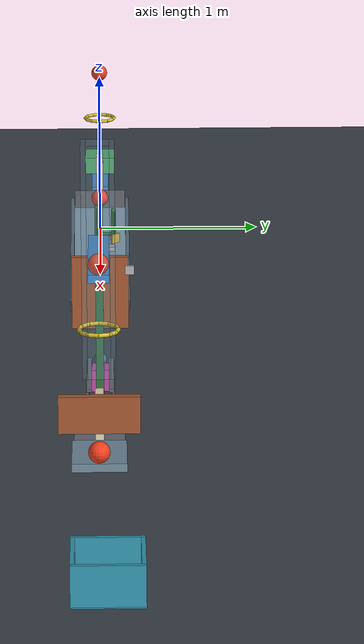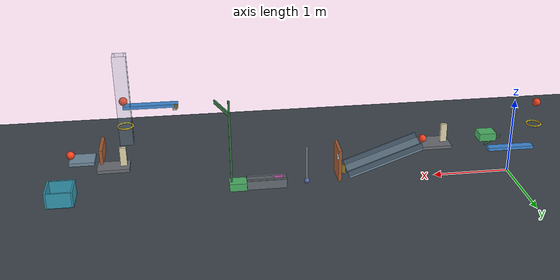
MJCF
<mujoco model="passive_chain_reaction">
  <compiler angle="degree" autolimits="true" inertiafromgeom="auto"/>
  <option timestep="0.002" gravity="0 0 -9.81" integrator="implicitfast" solver="Newton" iterations="100" tolerance="1e-10" cone="elliptic" impratio="5"/>
  <size njmax="3000" nconmax="1000"/>
  <visual>
    <global azimuth="90" elevation="-25"/>
    <headlight ambient="0.35 0.35 0.35" diffuse="0.65 0.65 0.65" specular="0.15 0.15 0.15"/>
  </visual>

  <!-- solref damping ratio 0.71565 approximates restitution 0.04. -->
  <!-- Unspecified keyframe coordinates use qpos0; all initial velocities are zero. -->
  <!-- The door and seesaw springs are held by contact-released transverse bolts. -->

  <worldbody>
    <light name="main_light" pos="2 -3 7" dir="0 0 -1" directional="true"/>
    <camera name="overview" pos="2.8 -7 4" xyaxes="1 0 0 0 0.447214 0.894427"/>
    <geom name="floor" type="plane" size="8 3 0.1" friction="0.72 0.005 0.0001" solref="0.006 0.71565" solimp="0.95 0.99 0.001" rgba="0.24 0.27 0.30 1"/>

    <body name="ball1" pos="-0.285 0 0.962020143">
      <freejoint name="ball1_free"/>
      <geom name="ball1_sphere" type="sphere" size="0.05" mass="0.20" friction="0.72 0.005 0.0001" solref="0.006 0.71565" solimp="0.95 0.99 0.001" rgba="0.95 0.25 0.12 1"/>
    </body>

    <!-- Twelve capsule segments give a 0.16 m minimum clear diameter. -->
    <body name="ring1" pos="-0.285 0 0.662020143">
      <geom name="ring1_01" type="capsule" fromto="0.093174857 0 0 0.080690967 0.046587429 0" size="0.01" mass="0" friction="0.72 0.005 0.0001" solref="0.006 0.71565" rgba="0.85 0.75 0.15 1"/>
      <geom name="ring1_02" type="capsule" fromto="0.080690967 0.046587429 0 0.046587429 0.080690967 0" size="0.01" mass="0" friction="0.72 0.005 0.0001" solref="0.006 0.71565" rgba="0.85 0.75 0.15 1"/>
      <geom name="ring1_03" type="capsule" fromto="0.046587429 0.080690967 0 0 0.093174857 0" size="0.01" mass="0" friction="0.72 0.005 0.0001" solref="0.006 0.71565" rgba="0.85 0.75 0.15 1"/>
      <geom name="ring1_04" type="capsule" fromto="0 0.093174857 0 -0.046587429 0.080690967 0" size="0.01" mass="0" friction="0.72 0.005 0.0001" solref="0.006 0.71565" rgba="0.85 0.75 0.15 1"/>
      <geom name="ring1_05" type="capsule" fromto="-0.046587429 0.080690967 0 -0.080690967 0.046587429 0" size="0.01" mass="0" friction="0.72 0.005 0.0001" solref="0.006 0.71565" rgba="0.85 0.75 0.15 1"/>
      <geom name="ring1_06" type="capsule" fromto="-0.080690967 0.046587429 0 -0.093174857 0 0" size="0.01" mass="0" friction="0.72 0.005 0.0001" solref="0.006 0.71565" rgba="0.85 0.75 0.15 1"/>
      <geom name="ring1_07" type="capsule" fromto="-0.093174857 0 0 -0.080690967 -0.046587429 0" size="0.01" mass="0" friction="0.72 0.005 0.0001" solref="0.006 0.71565" rgba="0.85 0.75 0.15 1"/>
      <geom name="ring1_08" type="capsule" fromto="-0.080690967 -0.046587429 0 -0.046587429 -0.080690967 0" size="0.01" mass="0" friction="0.72 0.005 0.0001" solref="0.006 0.71565" rgba="0.85 0.75 0.15 1"/>
      <geom name="ring1_09" type="capsule" fromto="-0.046587429 -0.080690967 0 0 -0.093174857 0" size="0.01" mass="0" friction="0.72 0.005 0.0001" solref="0.006 0.71565" rgba="0.85 0.75 0.15 1"/>
      <geom name="ring1_10" type="capsule" fromto="0 -0.093174857 0 0.046587429 -0.080690967 0" size="0.01" mass="0" friction="0.72 0.005 0.0001" solref="0.006 0.71565" rgba="0.85 0.75 0.15 1"/>
      <geom name="ring1_11" type="capsule" fromto="0.046587429 -0.080690967 0 0.080690967 -0.046587429 0" size="0.01" mass="0" friction="0.72 0.005 0.0001" solref="0.006 0.71565" rgba="0.85 0.75 0.15 1"/>
      <geom name="ring1_12" type="capsule" fromto="0.080690967 -0.046587429 0 0.093174857 0 0" size="0.01" mass="0" friction="0.72 0.005 0.0001" solref="0.006 0.71565" rgba="0.85 0.75 0.15 1"/>
    </body>

    <body name="lever1" pos="0 0 0.342020143">
      <joint name="lever1_hinge" type="hinge" axis="0 -1 0" range="0 45" damping="0.04" limited="true" solreflimit="0.004 1" solimplimit="0.99 0.999 0.001"/>
      <geom name="lever1_beam" type="box" size="0.30 0.05 0.02" mass="0.50" friction="0.72 0.005 0.0001" solref="0.006 0.71565" solimp="0.95 0.99 0.001" rgba="0.25 0.55 0.85 1"/>
    </body>

    <!-- The descending underside cam converts the rising lever tip into +x cart motion. -->
    <body name="cart1" pos="0.35 0 0.542220143">
      <joint name="cart1_slide" type="slide" axis="1 0 0" range="0 0.46" damping="0.20" limited="true" solreflimit="0.004 1"/>
      <geom name="cart1_chassis" type="box" size="0.11 0.09 0.05" mass="0.50" friction="0.72 0.005 0.0001" solref="0.006 0.71565" solimp="0.95 0.99 0.001" rgba="0.30 0.70 0.40 1"/>
      <geom name="cart1_drive_cam" type="capsule" fromto="-0.20 0 -0.02 0 0 -0.14" size="0.01" mass="0" friction="0.72 0.005 0.0001" solref="0.006 0.71565" rgba="0.20 0.45 0.25 1"/>
    </body>

    <!-- Flat starting perch prevents ball2 rolling before domino1 arrives. -->
    <body name="upper_platform" pos="1.035 0 0.472020143">
      <geom name="upper_platform_deck" type="box" size="0.19 0.15 0.02" mass="0" friction="0.72 0.005 0.0001" solref="0.006 0.71565" rgba="0.42 0.43 0.46 1"/>
    </body>

    <body name="domino1" pos="0.92 0 0.612220143">
      <freejoint name="domino1_free"/>
      <geom name="domino1_box" type="box" size="0.04 0.02 0.12" mass="0.25" friction="0.72 0.005 0.0001" solref="0.006 0.71565" solimp="0.95 0.99 0.001" rgba="0.90 0.85 0.70 1"/>
    </body>

    <body name="ball2" pos="1.19 0 0.542220143">
      <freejoint name="ball2_free"/>
      <geom name="ball2_sphere" type="sphere" size="0.05" mass="0.20" friction="0.72 0.005 0.0001" solref="0.006 0.71565" solimp="0.95 0.99 0.001" rgba="0.95 0.25 0.12 1"/>
    </body>

    <!-- Ramp top endpoints: (1.225,0,0.492020143), (2.164692621,0,0.15). -->
    <body name="ramp1" pos="0 0 0">
      <geom name="ramp1_surface" type="box" pos="1.688005908 0 0.302216219" euler="0 20 0" size="0.50 0.15 0.02" mass="0" friction="0.72 0.005 0.0001" solref="0.006 0.71565" solimp="0.95 0.99 0.001" rgba="0.45 0.55 0.62 1"/>
      <geom name="ramp1_left_rail" type="box" pos="1.706817016 0.16 0.353899313" euler="0 20 0" size="0.50 0.01 0.035" mass="0" friction="0.72 0.005 0.0001" solref="0.006 0.71565" rgba="0.30 0.38 0.45 1"/>
      <geom name="ramp1_right_rail" type="box" pos="1.706817016 -0.16 0.353899313" euler="0 20 0" size="0.50 0.01 0.035" mass="0" friction="0.72 0.005 0.0001" solref="0.006 0.71565" rgba="0.30 0.38 0.45 1"/>
    </body>

    <!-- The closed door face is 0.10 m beyond the ramp's low endpoint. -->
    <body name="door1" pos="2.284692621 0 0.09">
      <joint name="door1_hinge" type="hinge" axis="0 1 0" range="0 70" damping="0.04" stiffness="3.5" springref="70" limited="true" solreflimit="0.004 1" solimplimit="0.99 0.999 0.001"/>
      <geom name="door1_panel" type="box" pos="0 0 0.21" size="0.02 0.16 0.21" mass="0.45" friction="0.72 0.005 0.0001" solref="0.006 0.71565" solimp="0.95 0.99 0.001" rgba="0.65 0.35 0.20 1"/>
    </body>

    <!-- The ramp ball withdraws this transverse bolt through its diagonal paddle. -->
    <!-- Normal-only bolt contact models a bearing-supported locking pin. -->
    <body name="door1_latch" pos="2.284692621 0 0">
      <joint name="door1_latch_slide" type="slide" axis="0 1 0" range="0 0.085" damping="0.20" frictionloss="0.012" limited="true"/>
      <geom name="door1_latch_paddle" type="box" pos="-0.065 0 0.18" euler="0 0 45" size="0.006 0.04 0.06" mass="0.025" friction="0.72 0.005 0.0001" solref="0.006 0.71565" rgba="0.75 0.65 0.25 1"/>
      <geom name="door1_latch_bolt" type="box" pos="0.035 0.167 0.44" size="0.011 0.025 0.025" mass="0" condim="1" friction="0.72 0.005 0.0001" solref="0.004 1" solimp="0.99 0.999 0.001" rgba="0.70 0.70 0.72 1"/>
    </body>

    <!-- Pivot-to-lowest-point length is 0.50 m; rod and bob total 0.35 kg. -->
    <body name="pendulum1" pos="2.684692621 0 0.505">
      <joint name="pendulum1_hinge" type="hinge" axis="0 -1 0" range="0 38" damping="0.04" limited="true" solreflimit="0.004 1" solimplimit="0.99 0.999 0.001"/>
      <geom name="pendulum1_rod" type="capsule" fromto="0 0 0 0 0 -0.465" size="0.012" mass="0.10" friction="0.72 0.005 0.0001" solref="0.006 0.71565" rgba="0.60 0.62 0.66 1"/>
      <geom name="pendulum1_bob" type="sphere" pos="0 0 -0.465" size="0.035" mass="0.25" friction="0.72 0.005 0.0001" solref="0.006 0.71565" solimp="0.95 0.99 0.001" rgba="0.35 0.40 0.65 1"/>
    </body>

    <body name="block1" pos="3.046692621 0 0.0602">
      <freejoint name="block1_free"/>
      <geom name="block1_cube" type="box" size="0.06 0.06 0.06" mass="0.35" friction="0.72 0.005 0.0001" solref="0.006 0.71565" solimp="0.95 0.99 0.001" rgba="0.75 0.30 0.65 1"/>
    </body>

    <!-- Open-centre guide lips keep the free-jointed block sliding rather than tipping. -->
    <body name="block1_guide" pos="3.200692621 0 0">
      <geom name="block1_guide_left_wall" type="box" pos="0 0.069 0.06" size="0.254 0.006 0.06" mass="0" friction="0.72 0.005 0.0001" solref="0.006 0.71565" rgba="0.40 0.43 0.46 1"/>
      <geom name="block1_guide_right_wall" type="box" pos="0 -0.069 0.06" size="0.254 0.006 0.06" mass="0" friction="0.72 0.005 0.0001" solref="0.006 0.71565" rgba="0.40 0.43 0.46 1"/>
      <geom name="block1_guide_left_lip" type="box" pos="0 0.059 0.1292" size="0.254 0.013 0.008" mass="0" friction="0.72 0.005 0.0001" solref="0.006 0.71565" rgba="0.40 0.43 0.46 1"/>
      <geom name="block1_guide_right_lip" type="box" pos="0 -0.059 0.1292" size="0.254 0.013 0.008" mass="0" friction="0.72 0.005 0.0001" solref="0.006 0.71565" rgba="0.40 0.43 0.46 1"/>
    </body>

    <!-- Main cart mass is 0.50 kg; massless linkage carries its contact to seesaw height. -->
    <body name="cart2" pos="3.566692621 0 0.0502">
      <joint name="cart2_slide" type="slide" axis="1 0 0" range="0 0.46" damping="0.20" limited="true" solreflimit="0.004 1"/>
      <geom name="cart2_chassis" type="box" size="0.11 0.09 0.05" mass="0.50" friction="0.72 0.005 0.0001" solref="0.006 0.71565" solimp="0.95 0.99 0.001" rgba="0.30 0.70 0.40 1"/>
      <geom name="cart2_striker_mast" type="box" pos="0.08 0 0.58" size="0.012 0.02 0.57" mass="0" friction="0.72 0.005 0.0001" solref="0.006 0.71565" rgba="0.20 0.45 0.25 1"/>
      <geom name="cart2_drive_cam" type="capsule" fromto="0.09 0 0.9998 0.25 0 1.1698" size="0.012" mass="0" friction="0.72 0.005 0.0001" solref="0.006 0.71565" rgba="0.20 0.45 0.25 1"/>
      <geom name="cart2_latch_cam" type="capsule" fromto="0.09 0.075 0.9998 0.25 0.075 1.1698" size="0.012" mass="0" friction="0.72 0.005 0.0001" solref="0.006 0.71565" rgba="0.20 0.45 0.25 1"/>
      <geom name="cart2_cam_crossbar" type="capsule" fromto="0.09 0 0.9998 0.09 0.075 0.9998" size="0.008" mass="0" friction="0.72 0.005 0.0001" solref="0.006 0.71565" rgba="0.20 0.45 0.25 1"/>
    </body>

    <body name="seesaw1" pos="4.573692621 0 1.20">
      <joint name="seesaw1_hinge" type="hinge" axis="0 -1 0" range="0 42" damping="0.04" stiffness="3" springref="42" limited="true" solreflimit="0.004 1" solimplimit="0.99 0.999 0.001"/>
      <geom name="seesaw1_beam" type="box" size="0.325 0.05 0.02" mass="0.55" friction="0.72 0.005 0.0001" solref="0.006 0.71565" solimp="0.95 0.99 0.001" rgba="0.25 0.55 0.85 1"/>
    </body>

    <body name="seesaw1_latch" pos="4.573692621 0 1.21">
      <joint name="seesaw1_latch_slide" type="slide" axis="0 1 0" range="0 0.07" damping="0.20" frictionloss="0.012" limited="true"/>
      <geom name="seesaw1_latch_paddle" type="box" pos="-0.3037 0.082 0" euler="0 0 45" size="0.005 0.025 0.022" mass="0.025" friction="0.72 0.005 0.0001" solref="0.006 0.71565" rgba="0.75 0.65 0.25 1"/>
      <geom name="seesaw1_latch_bolt" type="box" pos="-0.285 0.060 -0.042" size="0.025 0.020 0.010" mass="0" condim="1" friction="0.72 0.005 0.0001" solref="0.004 1" solimp="0.99 0.999 0.001" rgba="0.70 0.70 0.72 1"/>
    </body>

    <body name="ball3" pos="4.888692621 0 1.27">
      <freejoint name="ball3_free"/>
      <geom name="ball3_sphere" type="sphere" size="0.05" mass="0.20" contype="3" conaffinity="3" friction="0.72 0.005 0.0001" solref="0.006 0.71565" solimp="0.95 0.99 0.001" rgba="0.95 0.25 0.12 1"/>
    </body>

    <!-- Ball-only guide faces provide a vertical launch corridor, clear width 0.108 m. -->
    <!-- Contact masks let the seesaw retract through the guide's launch opening. -->
    <body name="ball3_guide" pos="4.888692621 0 1.29">
      <geom name="ball3_guide_left" type="box" pos="-0.066 0 0" size="0.012 0.054 0.56" mass="0" contype="2" conaffinity="2" friction="0.72 0.005 0.0001" solref="0.006 0.71565" rgba="0.50 0.65 0.75 0.22"/>
      <geom name="ball3_guide_right" type="box" pos="0.066 0 0" size="0.012 0.054 0.56" mass="0" contype="2" conaffinity="2" friction="0.72 0.005 0.0001" solref="0.006 0.71565" rgba="0.50 0.65 0.75 0.22"/>
      <geom name="ball3_guide_front" type="box" pos="0 -0.066 0" size="0.078 0.012 0.56" mass="0" contype="2" conaffinity="2" friction="0.72 0.005 0.0001" solref="0.006 0.71565" rgba="0.50 0.65 0.75 0.22"/>
      <geom name="ball3_guide_back" type="box" pos="0 0.066 0" size="0.078 0.012 0.56" mass="0" contype="2" conaffinity="2" friction="0.72 0.005 0.0001" solref="0.006 0.71565" rgba="0.50 0.65 0.75 0.22"/>
    </body>

    <body name="ring2" pos="4.888692621 0 0.95">
      <geom name="ring2_01" type="capsule" fromto="0.093174857 0 0 0.080690967 0.046587429 0" size="0.01" mass="0" friction="0.72 0.005 0.0001" solref="0.006 0.71565" rgba="0.85 0.75 0.15 1"/>
      <geom name="ring2_02" type="capsule" fromto="0.080690967 0.046587429 0 0.046587429 0.080690967 0" size="0.01" mass="0" friction="0.72 0.005 0.0001" solref="0.006 0.71565" rgba="0.85 0.75 0.15 1"/>
      <geom name="ring2_03" type="capsule" fromto="0.046587429 0.080690967 0 0 0.093174857 0" size="0.01" mass="0" friction="0.72 0.005 0.0001" solref="0.006 0.71565" rgba="0.85 0.75 0.15 1"/>
      <geom name="ring2_04" type="capsule" fromto="0 0.093174857 0 -0.046587429 0.080690967 0" size="0.01" mass="0" friction="0.72 0.005 0.0001" solref="0.006 0.71565" rgba="0.85 0.75 0.15 1"/>
      <geom name="ring2_05" type="capsule" fromto="-0.046587429 0.080690967 0 -0.080690967 0.046587429 0" size="0.01" mass="0" friction="0.72 0.005 0.0001" solref="0.006 0.71565" rgba="0.85 0.75 0.15 1"/>
      <geom name="ring2_06" type="capsule" fromto="-0.080690967 0.046587429 0 -0.093174857 0 0" size="0.01" mass="0" friction="0.72 0.005 0.0001" solref="0.006 0.71565" rgba="0.85 0.75 0.15 1"/>
      <geom name="ring2_07" type="capsule" fromto="-0.093174857 0 0 -0.080690967 -0.046587429 0" size="0.01" mass="0" friction="0.72 0.005 0.0001" solref="0.006 0.71565" rgba="0.85 0.75 0.15 1"/>
      <geom name="ring2_08" type="capsule" fromto="-0.080690967 -0.046587429 0 -0.046587429 -0.080690967 0" size="0.01" mass="0" friction="0.72 0.005 0.0001" solref="0.006 0.71565" rgba="0.85 0.75 0.15 1"/>
      <geom name="ring2_09" type="capsule" fromto="-0.046587429 -0.080690967 0 0 -0.093174857 0" size="0.01" mass="0" friction="0.72 0.005 0.0001" solref="0.006 0.71565" rgba="0.85 0.75 0.15 1"/>
      <geom name="ring2_10" type="capsule" fromto="0 -0.093174857 0 0.046587429 -0.080690967 0" size="0.01" mass="0" friction="0.72 0.005 0.0001" solref="0.006 0.71565" rgba="0.85 0.75 0.15 1"/>
      <geom name="ring2_11" type="capsule" fromto="0.046587429 -0.080690967 0 0.080690967 -0.046587429 0" size="0.01" mass="0" friction="0.72 0.005 0.0001" solref="0.006 0.71565" rgba="0.85 0.75 0.15 1"/>
      <geom name="ring2_12" type="capsule" fromto="0.080690967 -0.046587429 0 0.093174857 0 0" size="0.01" mass="0" friction="0.72 0.005 0.0001" solref="0.006 0.71565" rgba="0.85 0.75 0.15 1"/>
    </body>

    <!-- Offset corner impact gives domino2 a +x tipping impulse. -->
    <!-- Ball-centre contact height is approximately 0.71 m, 0.24 m below ring2. -->
    <body name="domino2" pos="4.953692621 0 0.546698730">
      <freejoint name="domino2_free"/>
      <geom name="domino2_box" type="box" size="0.04 0.02 0.12" mass="0.25" friction="0.72 0.005 0.0001" solref="0.006 0.71565" solimp="0.95 0.99 0.001" rgba="0.90 0.85 0.70 1"/>
    </body>

    <body name="domino2_platform" pos="5.078692621 0 0.406698730">
      <geom name="domino2_platform_deck" type="box" size="0.195 0.12 0.02" mass="0" friction="0.72 0.005 0.0001" solref="0.006 0.71565" rgba="0.42 0.43 0.46 1"/>
    </body>

    <!-- Vertical-axis flap swings clockwise viewed from above. -->
    <!-- Its 0.38 m horizontal span and 0.18 m height clear the shelf surface. -->
    <body name="flap1" pos="5.193692621 -0.19 0.641">
      <joint name="flap1_hinge" type="hinge" axis="0 0 -1" range="0 60" damping="0.04" limited="true" solreflimit="0.004 1" solimplimit="0.99 0.999 0.001"/>
      <geom name="flap1_panel" type="box" pos="0 0.19 0" size="0.02 0.19 0.09" mass="0.28" friction="0.72 0.005 0.0001" solref="0.006 0.71565" solimp="0.95 0.99 0.001" rgba="0.65 0.35 0.20 1"/>
    </body>

    <body name="ball4" pos="5.575692621 0 0.6002">
      <freejoint name="ball4_free"/>
      <geom name="ball4_sphere" type="sphere" size="0.05" mass="0.20" friction="0.72 0.005 0.0001" solref="0.006 0.71565" solimp="0.95 0.99 0.001" rgba="0.95 0.25 0.12 1"/>
    </body>

    <!-- Shelf top is 0.55 m above the cup's inner floor. -->
    <body name="shelf1" pos="5.440692621 0 0.53">
      <geom name="shelf1_board" type="box" size="0.15 0.125 0.02" mass="0" friction="0.72 0.005 0.0001" solref="0.006 0.71565" solimp="0.95 0.99 0.001" rgba="0.45 0.55 0.62 1"/>
    </body>

    <!-- Clear footprint 0.30 by 0.30 m; walls 0.20 m high and 0.02 m thick. -->
    <body name="cup1" pos="5.755692621 0.035 0">
      <geom name="cup1_base" type="box" pos="0 0 -0.01" size="0.17 0.17 0.01" mass="0" friction="0.72 0.005 0.0001" solref="0.006 0.71565" solimp="0.95 0.99 0.001" rgba="0.20 0.60 0.70 1"/>
      <geom name="cup1_left_wall" type="box" pos="-0.16 0 0.10" size="0.01 0.17 0.10" mass="0" friction="0.72 0.005 0.0001" solref="0.006 0.71565" solimp="0.95 0.99 0.001" rgba="0.20 0.60 0.70 1"/>
      <geom name="cup1_right_wall" type="box" pos="0.16 0 0.10" size="0.01 0.17 0.10" mass="0" friction="0.72 0.005 0.0001" solref="0.006 0.71565" solimp="0.95 0.99 0.001" rgba="0.20 0.60 0.70 1"/>
      <geom name="cup1_front_wall" type="box" pos="0 -0.16 0.10" size="0.15 0.01 0.10" mass="0" friction="0.72 0.005 0.0001" solref="0.006 0.71565" solimp="0.95 0.99 0.001" rgba="0.20 0.60 0.70 1"/>
      <geom name="cup1_back_wall" type="box" pos="0 0.16 0.10" size="0.15 0.01 0.10" mass="0" friction="0.72 0.005 0.0001" solref="0.006 0.71565" solimp="0.95 0.99 0.001" rgba="0.20 0.60 0.70 1"/>
    </body>
  </worldbody>

  <keyframe>
    <key name="start" time="0"/>
  </keyframe>
</mujoco>
